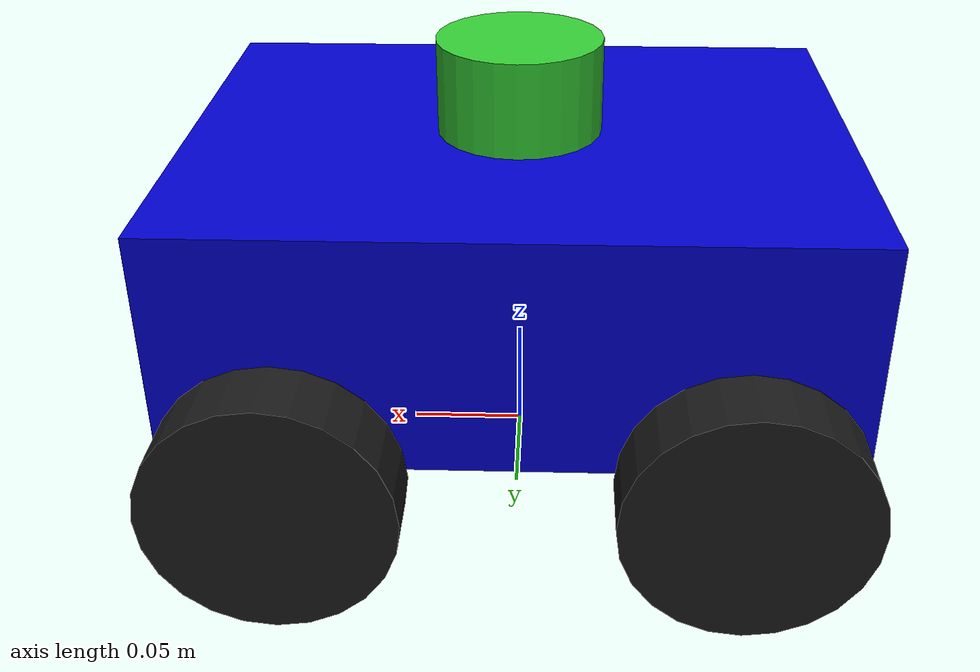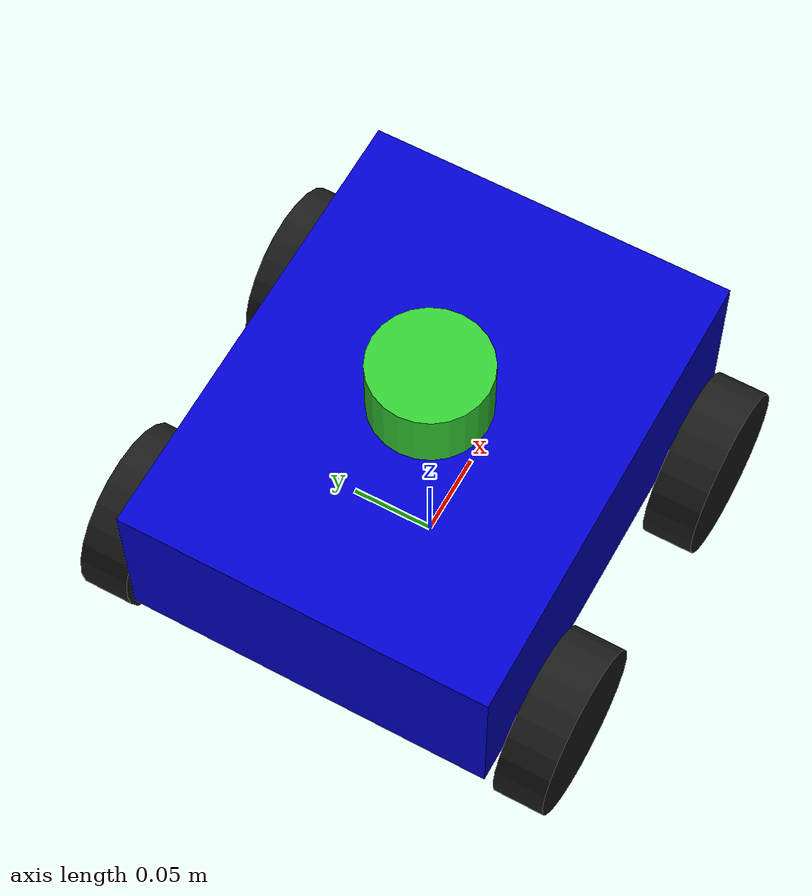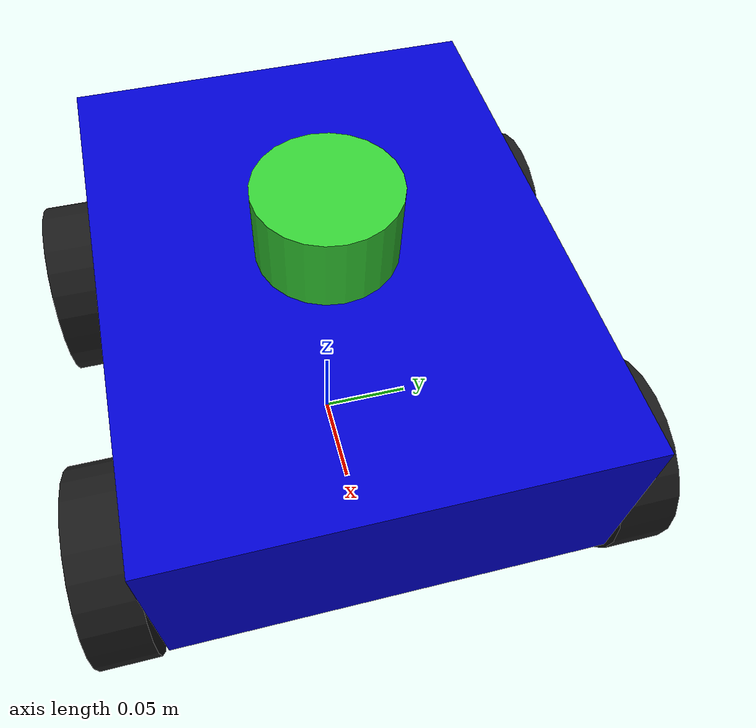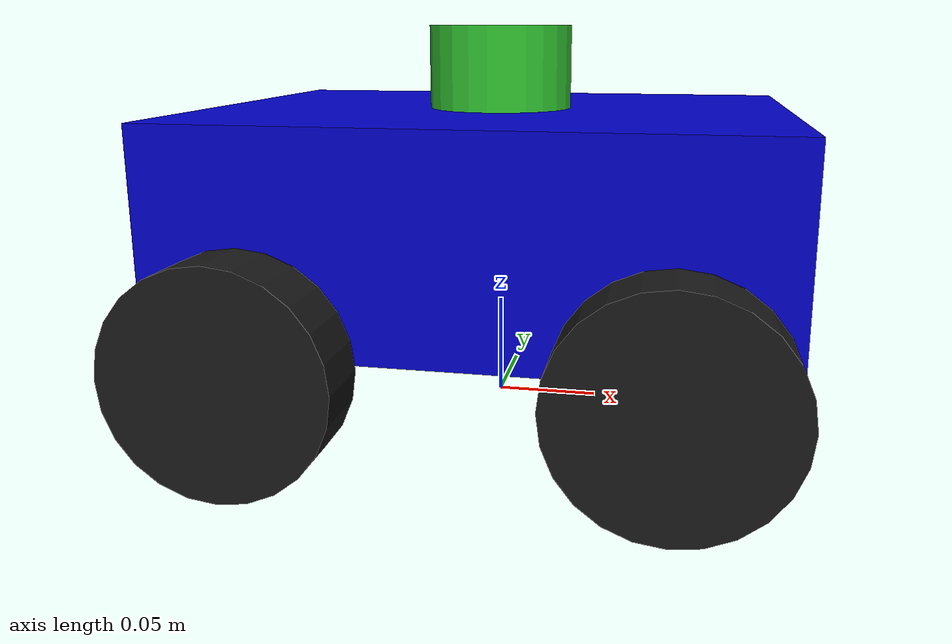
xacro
<?xml version="1.0"?>
<robot name="my_robot" xmlns:xacro="http://www.ros.org/wiki/xacro">

  <!-- =========================
       Basic reusable properties
       ========================= -->
  <xacro:property name="chassis_length" value="0.28"/>
  <xacro:property name="chassis_width"  value="0.22"/>
  <xacro:property name="chassis_height" value="0.10"/>

  <xacro:property name="wheel_radius" value="0.05"/>
  <xacro:property name="wheel_width"  value="0.03"/>

  <xacro:property name="laser_radius" value="0.035"/>
  <xacro:property name="laser_length" value="0.04"/>

  <!-- wheel placement -->
  <xacro:property name="front_wheel_x" value="0.09"/>
  <xacro:property name="rear_wheel_x"  value="-0.09"/>
  <xacro:property name="wheel_y_offset" value="${chassis_width/2.0 + wheel_width/2.0 + 0.005}"/>
  <xacro:property name="left_wheel_y"   value="${wheel_y_offset}"/>
  <xacro:property name="right_wheel_y"  value="-${wheel_y_offset}"/>
  <!-- simple masses for visualization / basic physics -->
  <xacro:property name="base_mass"  value="3.0"/>
  <xacro:property name="wheel_mass" value="0.2"/>
  <xacro:property name="laser_mass" value="0.1"/>

  <!-- =========================
       Helper macro: box inertia
       ========================= -->
  <xacro:macro name="box_inertia" params="mass x y z">
    <inertial>
      <mass value="${mass}"/>
      <origin xyz="0 0 0" rpy="0 0 0"/>
      <inertia
        ixx="${(1.0/12.0) * mass * (y*y + z*z)}"
        ixy="0.0"
        ixz="0.0"
        iyy="${(1.0/12.0) * mass * (x*x + z*z)}"
        iyz="0.0"
        izz="${(1.0/12.0) * mass * (x*x + y*y)}"/>
    </inertial>
  </xacro:macro>

  <!-- ==============================
       Helper macro: cylinder inertia
       cylinder axis assumed along Z
       ============================== -->
  <xacro:macro name="cylinder_inertia" params="mass radius length">
    <inertial>
      <mass value="${mass}"/>
      <origin xyz="0 0 0" rpy="0 0 0"/>
      <inertia
        ixx="${(1.0/12.0) * mass * (3*radius*radius + length*length)}"
        ixy="0.0"
        ixz="0.0"
        iyy="${(1.0/12.0) * mass * (3*radius*radius + length*length)}"
        iyz="0.0"
        izz="${0.5 * mass * radius * radius}"/>
    </inertial>
  </xacro:macro>

  <!-- =========================
       Reusable wheel macro
       ========================= -->
  <xacro:macro name="wheel_link_and_joint" params="wheel_name parent x y">
    <link name="${wheel_name}_link">
      <visual>
        <origin xyz="0 0 0" rpy="1.57079632679 0 0"/>
        <geometry>
          <cylinder radius="${wheel_radius}" length="${wheel_width}"/>
        </geometry>
        <material name="black">
          <color rgba="0.1 0.1 0.1 1.0"/>
        </material>
      </visual>

      <collision>
        <origin xyz="0 0 0" rpy="1.57079632679 0 0"/>
        <geometry>
          <cylinder radius="${wheel_radius}" length="${wheel_width}"/>
        </geometry>
      </collision>

      <xacro:cylinder_inertia
        mass="${wheel_mass}"
        radius="${wheel_radius}"
        length="${wheel_width}"/>
    </link>

    <joint name="${wheel_name}_joint" type="continuous">
      <parent link="${parent}"/>
      <child link="${wheel_name}_link"/>
      <origin xyz="${x} ${y} 0" rpy="0 0 0"/>
      <axis xyz="0 1 0"/>
    </joint>
  </xacro:macro>

  <!-- =========================
       base_footprint
       2D ground reference frame
       ========================= -->
  <link name="base_footprint"/>

  <!-- =========================
       base_link
       main body/chassis frame
       ========================= -->
  <link name="base_link">
    <visual>
      <origin xyz="0 0 ${chassis_height/2.0}" rpy="0 0 0"/>
      <geometry>
        <box size="${chassis_length} ${chassis_width} ${chassis_height}"/>
      </geometry>
      <material name="blue">
        <color rgba="0.0 0.0 0.8 1.0"/>
      </material>
    </visual>

    <collision>
      <origin xyz="0 0 ${chassis_height/2.0}" rpy="0 0 0"/>
      <geometry>
        <box size="${chassis_length} ${chassis_width} ${chassis_height}"/>
      </geometry>
    </collision>

    <xacro:box_inertia
      mass="${base_mass}"
      x="${chassis_length}"
      y="${chassis_width}"
      z="${chassis_height}"/>
  </link>

  <!-- fixed joint: base_footprint -> base_link -->
  <joint name="base_footprint_to_base_link" type="fixed">
    <parent link="base_footprint"/>
    <child link="base_link"/>
    <origin xyz="0 0 ${wheel_radius}" rpy="0 0 0"/>
  </joint>

  <!-- =========================
       Four wheels
       ========================= -->
  <xacro:wheel_link_and_joint
    wheel_name="front_left_wheel"
    parent="base_link"
    x="${front_wheel_x}"
    y="${left_wheel_y}"/>

  <xacro:wheel_link_and_joint
    wheel_name="rear_left_wheel"
    parent="base_link"
    x="${rear_wheel_x}"
    y="${left_wheel_y}"/>

  <xacro:wheel_link_and_joint
    wheel_name="front_right_wheel"
    parent="base_link"
    x="${front_wheel_x}"
    y="${right_wheel_y}"/>

  <xacro:wheel_link_and_joint
    wheel_name="rear_right_wheel"
    parent="base_link"
    x="${rear_wheel_x}"
    y="${right_wheel_y}"/>

  <!-- =========================
       LiDAR link
       ========================= -->
  <link name="laser_link">
    <visual>
      <origin xyz="0 0 0" rpy="0 0 0"/>
      <geometry>
        <cylinder radius="${laser_radius}" length="${laser_length}"/>
      </geometry>
      <material name="green">
        <color rgba="0.2 0.8 0.2 1.0"/>
      </material>
    </visual>

    <collision>
      <origin xyz="0 0 0" rpy="0 0 0"/>
      <geometry>
        <cylinder radius="${laser_radius}" length="${laser_length}"/>
      </geometry>
    </collision>

    <xacro:cylinder_inertia
      mass="${laser_mass}"
      radius="${laser_radius}"
      length="${laser_length}"/>
  </link>

  <joint name="laser_joint" type="fixed">
    <parent link="base_link"/>
    <child link="laser_link"/>
    <origin xyz="0 0 ${chassis_height + 0.02}" rpy="0 0 0"/>
  </joint>
    <!-- =========================
       Gazebo Harmonic diff drive
       ========================= -->
  <gazebo>
    <plugin
      filename="gz-sim-diff-drive-system"
      name="gz::sim::systems::DiffDrive">

      <left_joint>front_left_wheel_joint</left_joint>
      <left_joint>rear_left_wheel_joint</left_joint>

      <right_joint>front_right_wheel_joint</right_joint>
      <right_joint>rear_right_wheel_joint</right_joint>

      <wheel_separation>${left_wheel_y - right_wheel_y}</wheel_separation>
      <wheel_radius>${wheel_radius}</wheel_radius>

      <topic>/cmd_vel</topic>
      <odom_topic>/odom</odom_topic>
      <tf_topic>/tf</tf_topic>

      <frame_id>odom</frame_id>
      <child_frame_id>base_footprint</child_frame_id>

      <odom_publish_frequency>30</odom_publish_frequency>
    </plugin>
  </gazebo>
    <!-- =========================
       Gazebo joint state publisher
       ========================= -->
  <gazebo>
    <plugin
      filename="gz-sim-joint-state-publisher-system"
      name="gz::sim::systems::JointStatePublisher">
      <topic>/joint_states</topic>
    </plugin>
  </gazebo>
      <!-- =========================
       Gazebo lidar scan sim
       ========================= -->
  <gazebo reference="laser_link">
  <sensor name="laser_sensor" type="gpu_lidar">
    <update_rate>10</update_rate>
    <topic>scan</topic>
    <gz_frame_id>laser_link</gz_frame_id>
    <ray>
      <scan>
        <horizontal>
          <samples>720</samples>
          <resolution>1</resolution>
          <min_angle>-3.14159</min_angle>
          <max_angle>3.14159</max_angle>
        </horizontal>
      </scan>
      <range>
        <min>0.12</min>
        <max>8.0</max>
        <resolution>0.01</resolution>
      </range>
    </ray>
    <always_on>true</always_on>
    <visualize>true</visualize>
  </sensor>
</gazebo>
</robot>
